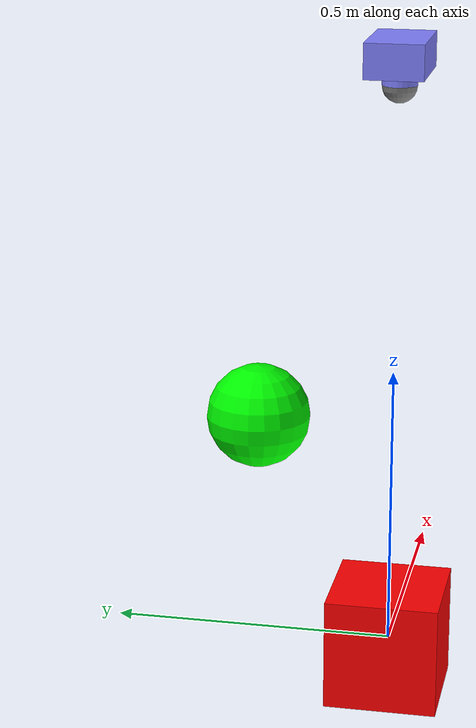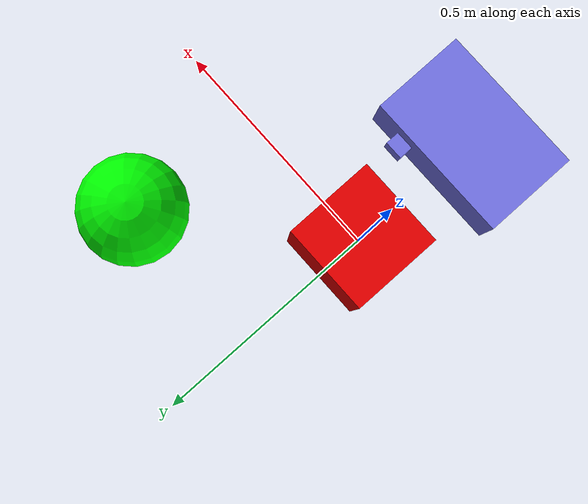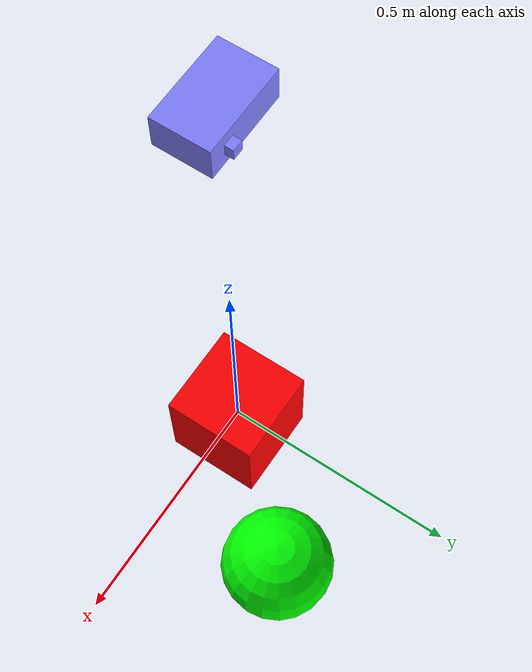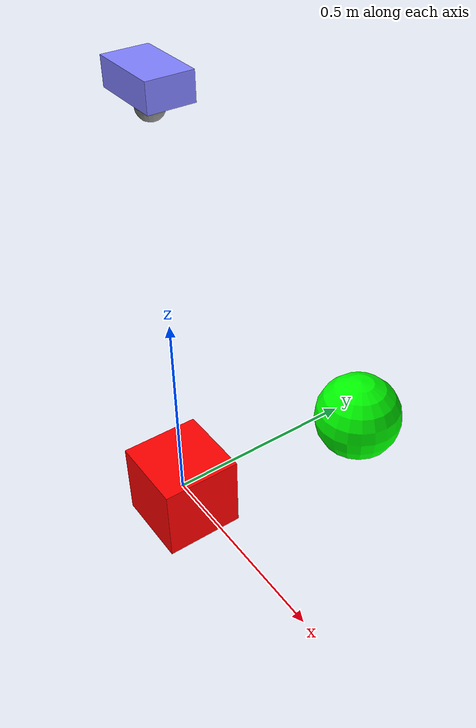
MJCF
<mujoco model="test_camera">

    <visual>
        <headlight ambient="0.7 0.7 0.7" diffuse="0.2 0.2 0.2" specular="0.1 0.1 0.1"/>
        <map znear="0.01"/>
        <scale contactwidth="0.02" contactheight="0.5"/>
        <rgba rangefinder="1 1 0.1 0.1"/>
    </visual>

    <worldbody>
        <geom name="red_box" type="box" size=".1 .1 .1" rgba="1 0 0 1"/>
        <geom name="green_sphere" pos="0.3 0.3 0.3" size=".1" rgba="0 1 0 1"/>

        <body name="camera" pos="0 0 1" euler="0 0 0">
            <joint name="camera_joint" type="hinge" axis="0 1 0" range="-30 30" damping="0.1"/>
            <camera name="camera" fovy="58" mode="fixed" resolution="640 480" />
            <site name="camera_optical_frame" size="0.03" />
            <body name="camera_marker" pos="0 0 0.05">
                <geom type="box" size="0.08 0.05 0.03" mass="1.0" rgba="0.5 0.5 1.0 1.0"/>
                <geom type="box" size="0.01 0.01 0.01" mass="0.0" rgba="0.5 0.5 1.0 1.0" pos="0.04 0.055 0"/>
                <geom type="cylinder" size="0.03 0.01" mass="0.0" rgba="0.5 0.5 1.0 1.0" pos="0 0 -0.04"/>
            </body>
        </body>
    </worldbody>

    <actuator>
        <!-- Position actuator with correct naming convention -->
        <position name="act_pos_camera_joint" joint="camera_joint"
                  kp="100.0" kv="0.0"
                  ctrlrange="-0.5236 0.5236" forcerange="-10 10"/>
    </actuator>

</mujoco>
